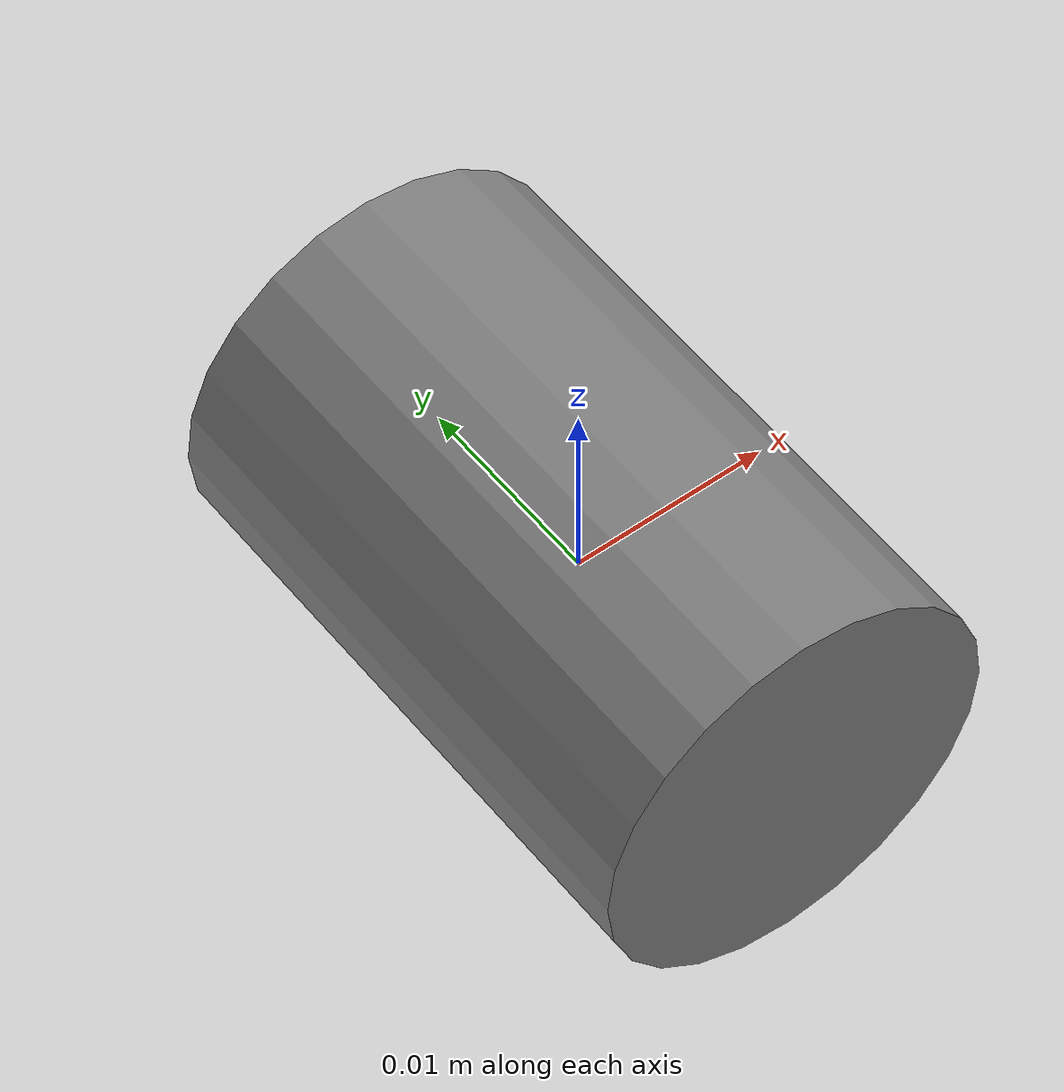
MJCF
<mujoco model="Ankle_cylinder">
    <worldbody>
        <body>
            <geom name="PointFoot" type="cylinder" mass="0.1" size="0.01 0.015" euler="90 0 90"
                rgba="0.5 0.5 0.5 1" friction="1 1 1" />
       </body>
    </worldbody>
</mujoco>
